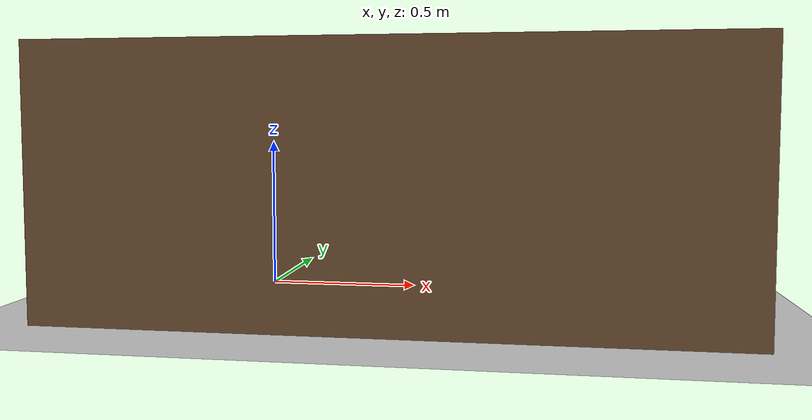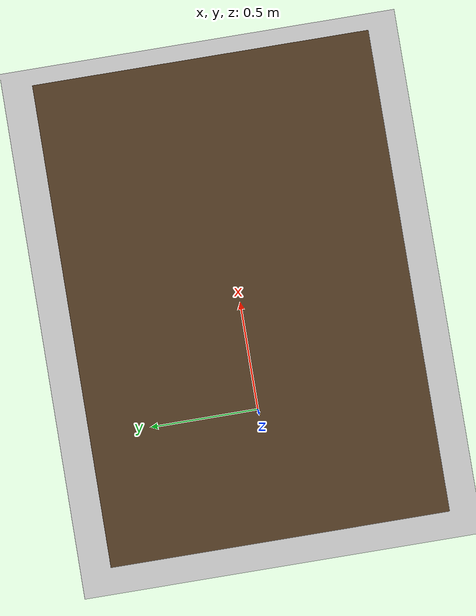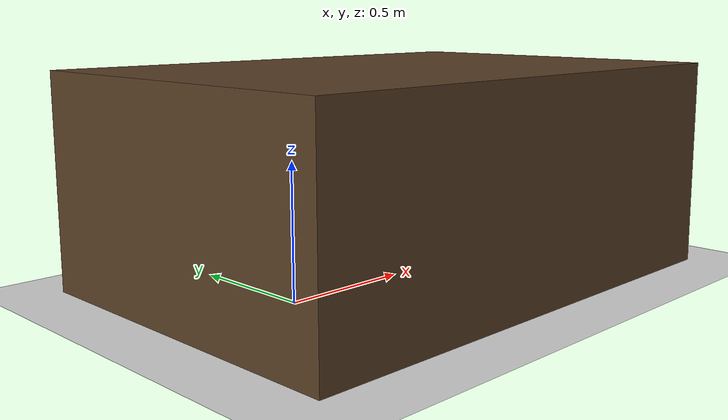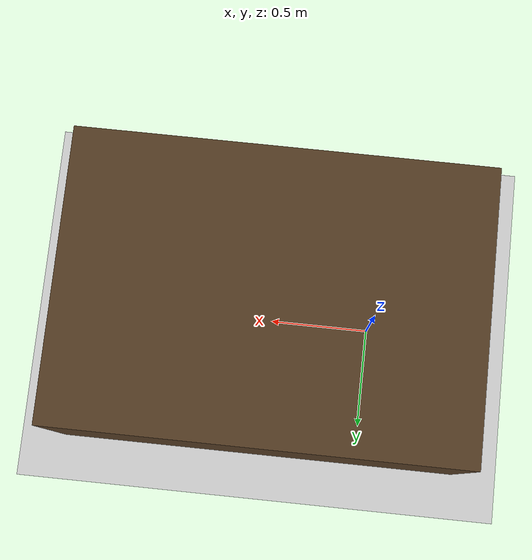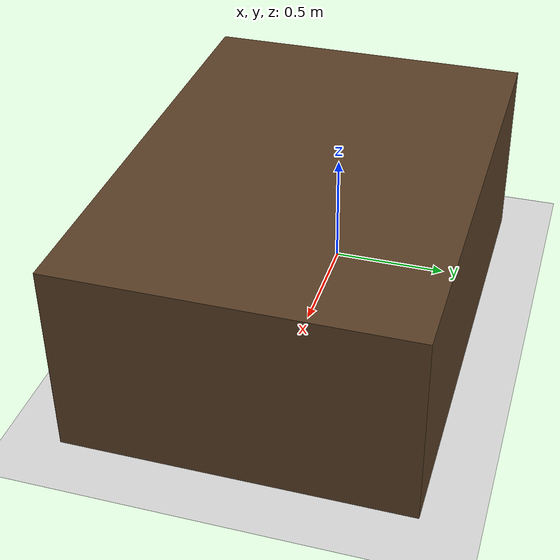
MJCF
<mujoco model="Scanned Objects">
    <!-- Memory? -->
    <size memory="500M"/>

    <!-- Default options -->
    <compiler angle="radian" autolimits="true" />
    <option integrator="RK4" noslip_iterations="20" />
    <default>
        <joint armature="0.1" damping="0.1" />
        <default class="visual_only">
            <geom type="mesh" contype="0" conaffinity="0" group="2" />
        </default>
        <default class="no_visual_collision">
            <!-- visual group of 'collision' should be 3 to not render -->
            <geom type="capsule" solimp=".9 .99 .001" solref=".015 1" group="3" />
        </default>
        <default class="visual_collision">
            <geom type="mesh" solimp=".9 .99 .001" solref=".015 1" group="2" />
        </default>
    </default>

    <!-- Sky and floor -->
    <include file="../asset/object/floor_isaac_style.xml" />

    <!-- Table -->
    <include file="../asset/object/object_table.xml" />

    <!-- Objects -->

</mujoco>

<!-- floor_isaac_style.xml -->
<mujoco model="floor and sky">

    <visual>
        <headlight diffuse="0.6 0.6 0.6" ambient="0.3 0.3 0.3" specular="0 0 0" />
        <rgba haze="0.15 0.25 0.35 1" />
    </visual>

    <asset>
        <!-- Sky -->
        <texture type="skybox" builtin="gradient" rgb1="0.3 0.5 0.7" rgb2="0 0 0" width="512"
            height="3072" />
        <!-- Ground -->
        <texture type="2d" name="groundplane" builtin="checker" mark="edge" rgb1="0.9 0.9 0.9"
            rgb2="0.8 0.8 0.8"
            markrgb="0.8 0.8 0.8" width="1000" height="1000" />
        <material name="groundplane" texture="groundplane" texuniform="true" texrepeat="1 1"
            reflectance="0.1" />
    </asset>

    <worldbody>
        <light pos="1 -1 1.5" dir="-1 1 -1" diffuse="0.5 0.5 0.5" directional="true" />
        <geom name="floor" group="1" size="0 0 0.05" type="plane" material="groundplane" />
    </worldbody>

</mujoco>

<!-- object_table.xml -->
<mujocoinclude>

    <asset>
        <texture type="2d" name="light_wood" file="../mesh/light_wood_v3.png" />
        <material name="wood_table_mat" texture="light_wood" specular="0.5" shininess="0.5"
            rgba="0.5 0.5 0.5 1" />
    </asset>

    <worldbody>
        <body name="front_object_table" pos="0 0 0" euler="0 0 0">
            <geom name="front_object_table" size="1.0 0.7 0.4" pos="0.5 0 0.4" type="box"
                material="wood_table_mat" />
            <inertial pos="0 0 0" mass="1" diaginertia="0 0 0" />

            <body name="camera" pos="0.5 0 1.75">
                <camera name="external" pos="0 0 0" xyaxes="1 0 0 0 1 0" fovy="30" />
            </body>

        </body>

    </worldbody>

</mujocoinclude>
